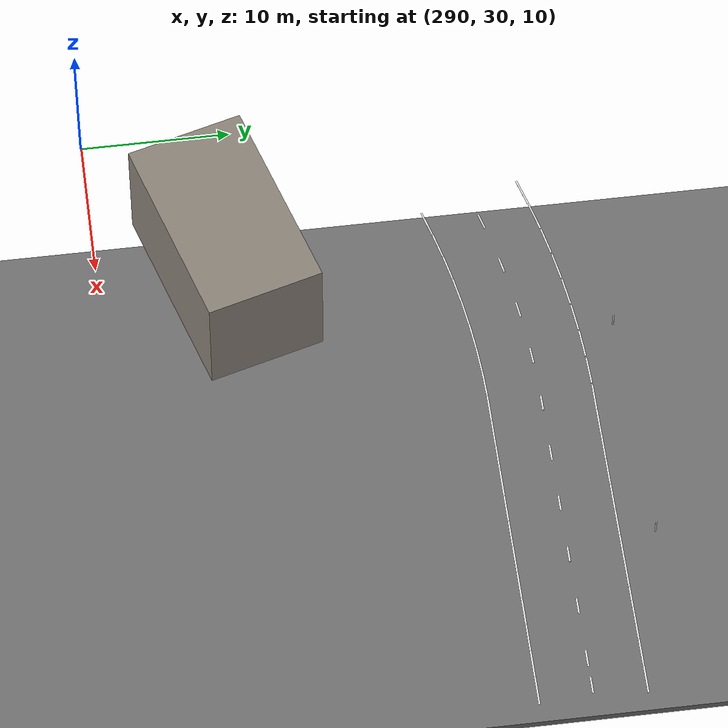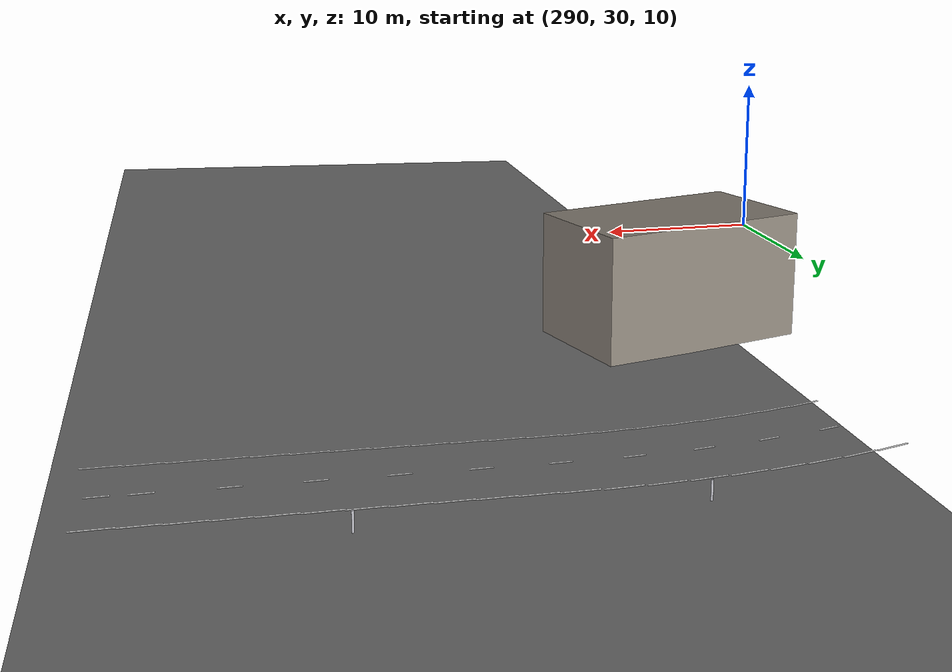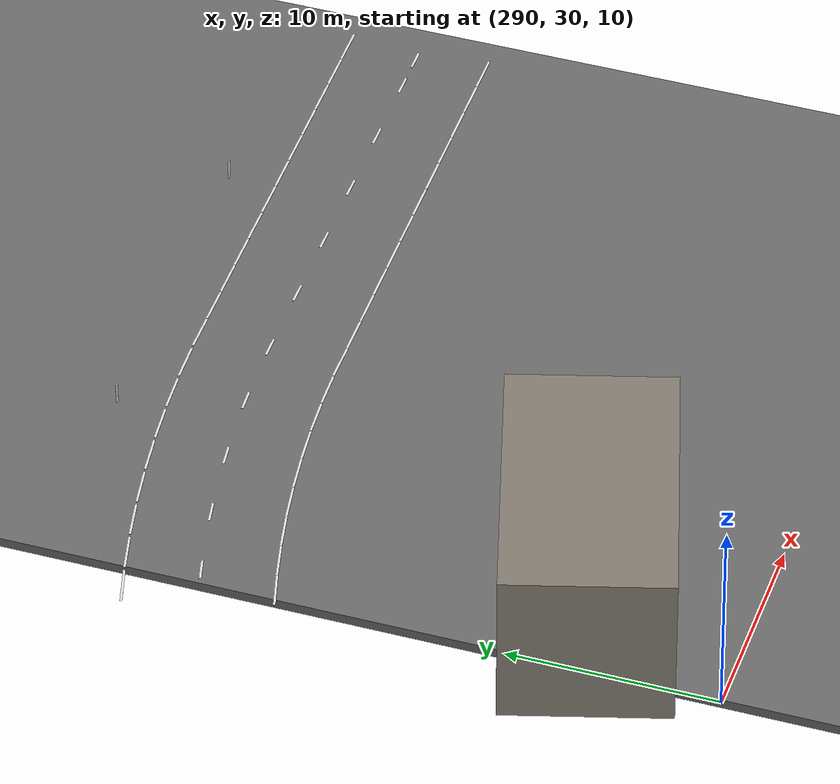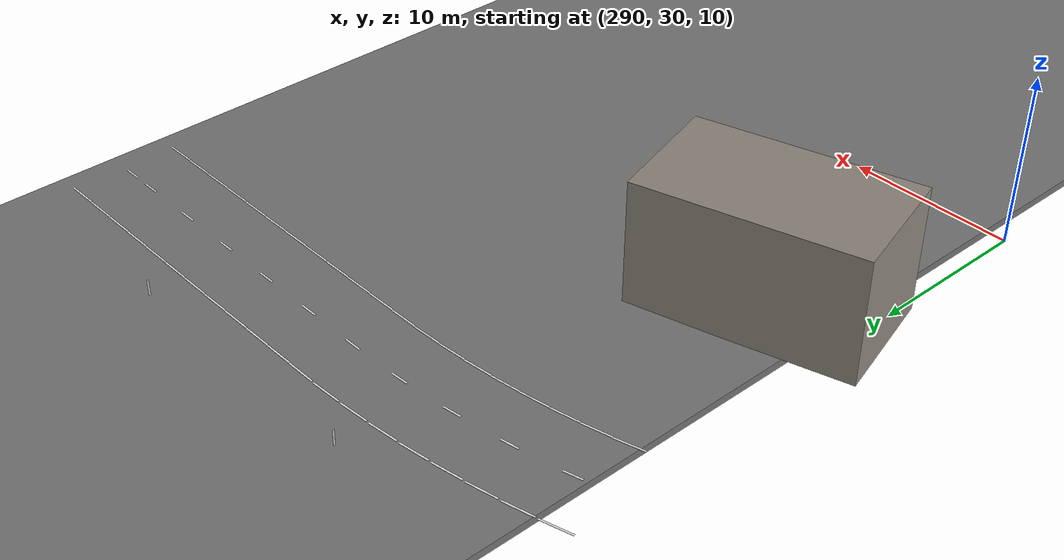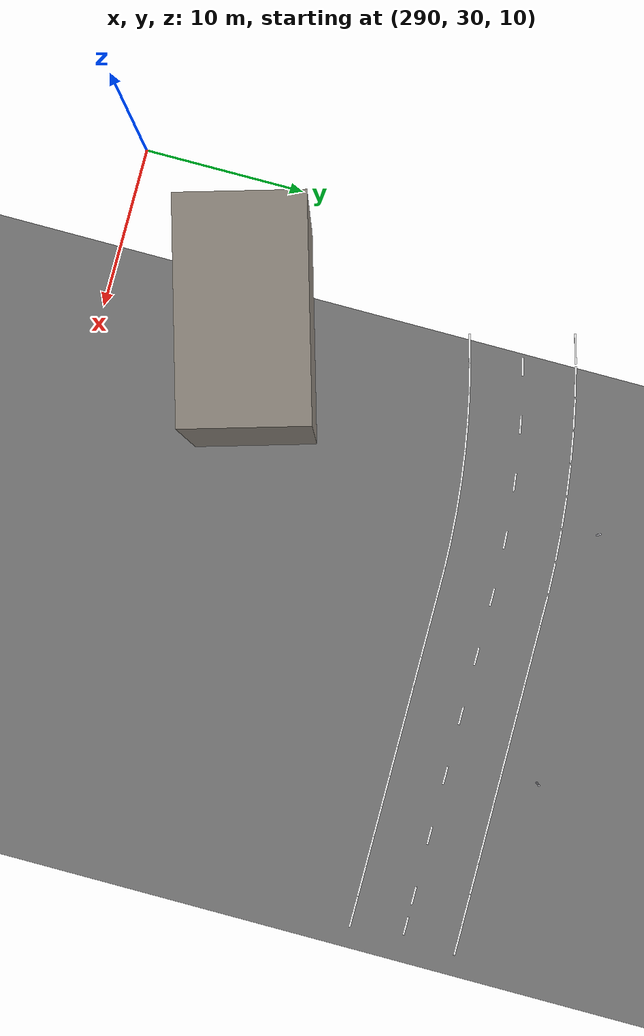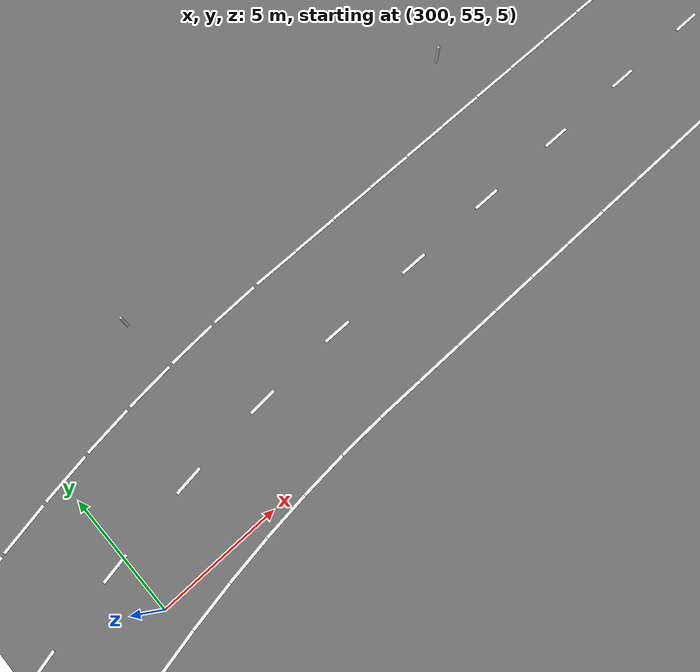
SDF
<sdf version="1.4">
 <world name="marathon_course">
  <include><uri>model://sun</uri></include>
  <model name="road_8">
   <static>true</static>
   <pose>315.2043631016093 37.70038853386919 5.251874541585085 0 -0.017453292519943295 0</pose>
   <link name="link">
    <collision name="collision">
     <geometry><box><size>40.4 125.40077706773837 0.5</size></box></geometry>
    </collision>
    <visual name="visual">
     <geometry><box><size>40.4 125.40077706773837 0.5</size></box></geometry>
     <material><ambient>0.45 0.45 0.45 1</ambient><diffuse>0.45 0.45 0.45 1</diffuse></material>
    </visual>
   </link>
  </model>
  <model name="paint_left_edge_152">
   <static>true</static>
   <pose>293.7725500420109 59.462458314118734 5.147818935111349 0 0 0.2685121926145122</pose>
   <link name="link">
    <visual name="visual">
     <geometry><box><size>2.05 0.12 0.02</size></box></geometry>
     <material><ambient>0.95 0.95 0.95 1</ambient><diffuse>0.95 0.95 0.95 1</diffuse></material>
    </visual>
   </link>
  </model>
  <model name="paint_left_edge_153">
   <static>true</static>
   <pose>295.89347898868976 60.00793096317613 5.184839887583765 0 0 0.2349481685376982</pose>
   <link name="link">
    <visual name="visual">
     <geometry><box><size>2.05 0.12 0.02</size></box></geometry>
     <material><ambient>0.95 0.95 0.95 1</ambient><diffuse>0.95 0.95 0.95 1</diffuse></material>
    </visual>
   </link>
  </model>
  <model name="paint_left_edge_154">
   <static>true</static>
   <pose>298.031518207744 60.48192284656175 5.222159500971433 0 0 0.20138414446088418</pose>
   <link name="link">
    <visual name="visual">
     <geometry><box><size>2.05 0.12 0.02</size></box></geometry>
     <material><ambient>0.95 0.95 0.95 1</ambient><diffuse>0.95 0.95 0.95 1</diffuse></material>
    </visual>
   </link>
  </model>
  <model name="paint_left_edge_155">
   <static>true</static>
   <pose>300.18425933064225 60.88390004182646 5.259735737045266 0 0 0.16782012038407013</pose>
   <link name="link">
    <visual name="visual">
     <geometry><box><size>2.05 0.12 0.02</size></box></geometry>
     <material><ambient>0.95 0.95 0.95 1</ambient><diffuse>0.95 0.95 0.95 1</diffuse></material>
    </visual>
   </link>
  </model>
  <model name="paint_left_edge_156">
   <static>true</static>
   <pose>302.34927742807014 61.21340974659931 5.297526268506635 0 0 0.1342560963072561</pose>
   <link name="link">
    <visual name="visual">
     <geometry><box><size>2.05 0.12 0.02</size></box></geometry>
     <material><ambient>0.95 0.95 0.95 1</ambient><diffuse>0.95 0.95 0.95 1</diffuse></material>
    </visual>
   </link>
  </model>
  <model name="paint_left_edge_157">
   <static>true</static>
   <pose>304.52413374146346 61.470080788641404 5.33548852666646 0 0 0.10069207223044208</pose>
   <link name="link">
    <visual name="visual">
     <geometry><box><size>2.05 0.12 0.02</size></box></geometry>
     <material><ambient>0.95 0.95 0.95 1</ambient><diffuse>0.95 0.95 0.95 1</diffuse></material>
    </visual>
   </link>
  </model>
  <model name="paint_left_edge_158">
   <static>true</static>
   <pose>306.70637843011804 61.65362404394833 5.373579749396184 0 0 0.06712804815362805</pose>
   <link name="link">
    <visual name="visual">
     <geometry><box><size>2.05 0.12 0.02</size></box></geometry>
     <material><ambient>0.95 0.95 0.95 1</ambient><diffuse>0.95 0.95 0.95 1</diffuse></material>
    </visual>
   </link>
  </model>
  <model name="paint_left_edge_159">
   <static>true</static>
   <pose>308.89355333078333 61.76383276243038 5.411757029296664 0 0 0.033564024076814025</pose>
   <link name="link">
    <visual name="visual">
     <geometry><box><size>2.05 0.12 0.02</size></box></geometry>
     <material><ambient>0.95 0.95 0.95 1</ambient><diffuse>0.95 0.95 0.95 1</diffuse></material>
    </visual>
   </link>
  </model>
  <model name="paint_left_edge_160">
   <static>true</static>
   <pose>311.08319472663095 61.80058280080378 5.4499773620306975 0 0 0.0</pose>
   <link name="link">
    <visual name="visual">
     <geometry><box><size>2.05 0.12 0.02</size></box></geometry>
     <material><ambient>0.95 0.95 0.95 1</ambient><diffuse>0.95 0.95 0.95 1</diffuse></material>
    </visual>
   </link>
  </model>
  <model name="paint_left_edge_161">
   <static>true</static>
   <pose>313.08319472663095 61.80058280080378 5.484887491887132 0 0 0.0</pose>
   <link name="link">
    <visual name="visual">
     <geometry><box><size>2.05 0.12 0.02</size></box></geometry>
     <material><ambient>0.95 0.95 0.95 1</ambient><diffuse>0.95 0.95 0.95 1</diffuse></material>
    </visual>
   </link>
  </model>
  <model name="paint_left_edge_162">
   <static>true</static>
   <pose>315.08319472663095 61.80058280080378 5.519797621743567 0 0 0.0</pose>
   <link name="link">
    <visual name="visual">
     <geometry><box><size>2.05 0.12 0.02</size></box></geometry>
     <material><ambient>0.95 0.95 0.95 1</ambient><diffuse>0.95 0.95 0.95 1</diffuse></material>
    </visual>
   </link>
  </model>
  <model name="paint_left_edge_163">
   <static>true</static>
   <pose>317.08319472663095 61.80058280080378 5.554707751600002 0 0 0.0</pose>
   <link name="link">
    <visual name="visual">
     <geometry><box><size>2.05 0.12 0.02</size></box></geometry>
     <material><ambient>0.95 0.95 0.95 1</ambient><diffuse>0.95 0.95 0.95 1</diffuse></material>
    </visual>
   </link>
  </model>
  <model name="paint_left_edge_164">
   <static>true</static>
   <pose>319.08319472663095 61.80058280080378 5.589617881456438 0 0 0.0</pose>
   <link name="link">
    <visual name="visual">
     <geometry><box><size>2.05 0.12 0.02</size></box></geometry>
     <material><ambient>0.95 0.95 0.95 1</ambient><diffuse>0.95 0.95 0.95 1</diffuse></material>
    </visual>
   </link>
  </model>
  <model name="paint_left_edge_165">
   <static>true</static>
   <pose>321.08319472663095 61.80058280080378 5.624528011312873 0 0 0.0</pose>
   <link name="link">
    <visual name="visual">
     <geometry><box><size>2.05 0.12 0.02</size></box></geometry>
     <material><ambient>0.95 0.95 0.95 1</ambient><diffuse>0.95 0.95 0.95 1</diffuse></material>
    </visual>
   </link>
  </model>
  <model name="paint_left_edge_166">
   <static>true</static>
   <pose>323.08319472663095 61.80058280080378 5.659438141169308 0 0 0.0</pose>
   <link name="link">
    <visual name="visual">
     <geometry><box><size>2.05 0.12 0.02</size></box></geometry>
     <material><ambient>0.95 0.95 0.95 1</ambient><diffuse>0.95 0.95 0.95 1</diffuse></material>
    </visual>
   </link>
  </model>
  <model name="paint_left_edge_167">
   <static>true</static>
   <pose>325.08319472663095 61.80058280080378 5.694348271025744 0 0 0.0</pose>
   <link name="link">
    <visual name="visual">
     <geometry><box><size>2.05 0.12 0.02</size></box></geometry>
     <material><ambient>0.95 0.95 0.95 1</ambient><diffuse>0.95 0.95 0.95 1</diffuse></material>
    </visual>
   </link>
  </model>
  <model name="paint_left_edge_168">
   <static>true</static>
   <pose>327.08319472663095 61.80058280080378 5.729258400882179 0 0 0.0</pose>
   <link name="link">
    <visual name="visual">
     <geometry><box><size>2.05 0.12 0.02</size></box></geometry>
     <material><ambient>0.95 0.95 0.95 1</ambient><diffuse>0.95 0.95 0.95 1</diffuse></material>
    </visual>
   </link>
  </model>
  <model name="paint_left_edge_169">
   <static>true</static>
   <pose>329.08319472663095 61.80058280080378 5.764168530738614 0 0 0.0</pose>
   <link name="link">
    <visual name="visual">
     <geometry><box><size>2.05 0.12 0.02</size></box></geometry>
     <material><ambient>0.95 0.95 0.95 1</ambient><diffuse>0.95 0.95 0.95 1</diffuse></material>
    </visual>
   </link>
  </model>
  <model name="paint_left_edge_170">
   <static>true</static>
   <pose>331.08319472663095 61.80058280080378 5.799078660595049 0 0 0.0</pose>
   <link name="link">
    <visual name="visual">
     <geometry><box><size>2.05 0.12 0.02</size></box></geometry>
     <material><ambient>0.95 0.95 0.95 1</ambient><diffuse>0.95 0.95 0.95 1</diffuse></material>
    </visual>
   </link>
  </model>
  <model name="paint_left_edge_171">
   <static>true</static>
   <pose>333.08319472663095 61.80058280080378 5.833988790451484 0 0 0.0</pose>
   <link name="link">
    <visual name="visual">
     <geometry><box><size>2.05 0.12 0.02</size></box></geometry>
     <material><ambient>0.95 0.95 0.95 1</ambient><diffuse>0.95 0.95 0.95 1</diffuse></material>
    </visual>
   </link>
  </model>
  <model name="paint_right_edge_152">
   <static>true</static>
   <pose>295.6296306978322 52.7132915923838 5.180234398535648 0 0 0.2685121926145122</pose>
   <link name="link">
    <visual name="visual">
     <geometry><box><size>2.05 0.12 0.02</size></box></geometry>
     <material><ambient>0.95 0.95 0.95 1</ambient><diffuse>0.95 0.95 0.95 1</diffuse></material>
    </visual>
   </link>
  </model>
  <model name="paint_right_edge_153">
   <static>true</static>
   <pose>297.52302703720454 53.20024610284499 5.213283754574241 0 0 0.2349481685376982</pose>
   <link name="link">
    <visual name="visual">
     <geometry><box><size>2.05 0.12 0.02</size></box></geometry>
     <material><ambient>0.95 0.95 0.95 1</ambient><diffuse>0.95 0.95 0.95 1</diffuse></material>
    </visual>
   </link>
  </model>
  <model name="paint_right_edge_154">
   <static>true</static>
   <pose>299.4316980641763 53.62338828226588 5.246599731276641 0 0 0.20138414446088418</pose>
   <link name="link">
    <visual name="visual">
     <geometry><box><size>2.05 0.12 0.02</size></box></geometry>
     <material><ambient>0.95 0.95 0.95 1</ambient><diffuse>0.95 0.95 0.95 1</diffuse></material>
    </visual>
   </link>
  </model>
  <model name="paint_right_edge_155">
   <static>true</static>
   <pose>301.35349377925405 53.982241487233985 5.280144800262093 0 0 0.16782012038407013</pose>
   <link name="link">
    <visual name="visual">
     <geometry><box><size>2.05 0.12 0.02</size></box></geometry>
     <material><ambient>0.95 0.95 0.95 1</ambient><diffuse>0.95 0.95 0.95 1</diffuse></material>
    </visual>
   </link>
  </model>
  <model name="paint_right_edge_156">
   <static>true</static>
   <pose>303.28624939879694 54.276401491877955 5.313881175091592 0 0 0.1342560963072561</pose>
   <link name="link">
    <visual name="visual">
     <geometry><box><size>2.05 0.12 0.02</size></box></geometry>
     <material><ambient>0.95 0.95 0.95 1</ambient><diffuse>0.95 0.95 0.95 1</diffuse></material>
    </visual>
   </link>
  </model>
  <model name="paint_right_edge_157">
   <static>true</static>
   <pose>305.2277877935121 54.505536943202884 5.347770853831973 0 0 0.10069207223044208</pose>
   <link name="link">
    <visual name="visual">
     <geometry><box><size>2.05 0.12 0.02</size></box></geometry>
     <material><ambient>0.95 0.95 0.95 1</ambient><diffuse>0.95 0.95 0.95 1</diffuse></material>
    </visual>
   </link>
  </model>
  <model name="paint_right_edge_158">
   <static>true</static>
   <pose>307.175921940855 54.66938973433895 5.38177566186272 0 0 0.06712804815362805</pose>
   <link name="link">
    <visual name="visual">
     <geometry><box><size>2.05 0.12 0.02</size></box></geometry>
     <material><ambient>0.95 0.95 0.95 1</ambient><diffuse>0.95 0.95 0.95 1</diffuse></material>
    </visual>
   </link>
  </model>
  <model name="paint_right_edge_159">
   <static>true</static>
   <pose>309.12845738857544 54.767775295282696 5.415857294877327 0 0 0.033564024076814025</pose>
   <link name="link">
    <visual name="visual">
     <geometry><box><size>2.05 0.12 0.02</size></box></geometry>
     <material><ambient>0.95 0.95 0.95 1</ambient><diffuse>0.95 0.95 0.95 1</diffuse></material>
    </visual>
   </link>
  </model>
  <model name="paint_right_edge_160">
   <static>true</static>
   <pose>311.08319472663095 54.80058280080378 5.4499773620306975 0 0 0.0</pose>
   <link name="link">
    <visual name="visual">
     <geometry><box><size>2.05 0.12 0.02</size></box></geometry>
     <material><ambient>0.95 0.95 0.95 1</ambient><diffuse>0.95 0.95 0.95 1</diffuse></material>
    </visual>
   </link>
  </model>
  <model name="paint_right_edge_161">
   <static>true</static>
   <pose>313.08319472663095 54.80058280080378 5.484887491887132 0 0 0.0</pose>
   <link name="link">
    <visual name="visual">
     <geometry><box><size>2.05 0.12 0.02</size></box></geometry>
     <material><ambient>0.95 0.95 0.95 1</ambient><diffuse>0.95 0.95 0.95 1</diffuse></material>
    </visual>
   </link>
  </model>
  <model name="paint_right_edge_162">
   <static>true</static>
   <pose>315.08319472663095 54.80058280080378 5.519797621743567 0 0 0.0</pose>
   <link name="link">
    <visual name="visual">
     <geometry><box><size>2.05 0.12 0.02</size></box></geometry>
     <material><ambient>0.95 0.95 0.95 1</ambient><diffuse>0.95 0.95 0.95 1</diffuse></material>
    </visual>
   </link>
  </model>
  <model name="paint_right_edge_163">
   <static>true</static>
   <pose>317.08319472663095 54.80058280080378 5.554707751600002 0 0 0.0</pose>
   <link name="link">
    <visual name="visual">
     <geometry><box><size>2.05 0.12 0.02</size></box></geometry>
     <material><ambient>0.95 0.95 0.95 1</ambient><diffuse>0.95 0.95 0.95 1</diffuse></material>
    </visual>
   </link>
  </model>
  <model name="paint_right_edge_164">
   <static>true</static>
   <pose>319.08319472663095 54.80058280080378 5.589617881456438 0 0 0.0</pose>
   <link name="link">
    <visual name="visual">
     <geometry><box><size>2.05 0.12 0.02</size></box></geometry>
     <material><ambient>0.95 0.95 0.95 1</ambient><diffuse>0.95 0.95 0.95 1</diffuse></material>
    </visual>
   </link>
  </model>
  <model name="paint_right_edge_165">
   <static>true</static>
   <pose>321.08319472663095 54.80058280080378 5.624528011312873 0 0 0.0</pose>
   <link name="link">
    <visual name="visual">
     <geometry><box><size>2.05 0.12 0.02</size></box></geometry>
     <material><ambient>0.95 0.95 0.95 1</ambient><diffuse>0.95 0.95 0.95 1</diffuse></material>
    </visual>
   </link>
  </model>
  <model name="paint_right_edge_166">
   <static>true</static>
   <pose>323.08319472663095 54.80058280080378 5.659438141169308 0 0 0.0</pose>
   <link name="link">
    <visual name="visual">
     <geometry><box><size>2.05 0.12 0.02</size></box></geometry>
     <material><ambient>0.95 0.95 0.95 1</ambient><diffuse>0.95 0.95 0.95 1</diffuse></material>
    </visual>
   </link>
  </model>
  <model name="paint_right_edge_167">
   <static>true</static>
   <pose>325.08319472663095 54.80058280080378 5.694348271025744 0 0 0.0</pose>
   <link name="link">
    <visual name="visual">
     <geometry><box><size>2.05 0.12 0.02</size></box></geometry>
     <material><ambient>0.95 0.95 0.95 1</ambient><diffuse>0.95 0.95 0.95 1</diffuse></material>
    </visual>
   </link>
  </model>
  <model name="paint_right_edge_168">
   <static>true</static>
   <pose>327.08319472663095 54.80058280080378 5.729258400882179 0 0 0.0</pose>
   <link name="link">
    <visual name="visual">
     <geometry><box><size>2.05 0.12 0.02</size></box></geometry>
     <material><ambient>0.95 0.95 0.95 1</ambient><diffuse>0.95 0.95 0.95 1</diffuse></material>
    </visual>
   </link>
  </model>
  <model name="paint_right_edge_169">
   <static>true</static>
   <pose>329.08319472663095 54.80058280080378 5.764168530738614 0 0 0.0</pose>
   <link name="link">
    <visual name="visual">
     <geometry><box><size>2.05 0.12 0.02</size></box></geometry>
     <material><ambient>0.95 0.95 0.95 1</ambient><diffuse>0.95 0.95 0.95 1</diffuse></material>
    </visual>
   </link>
  </model>
  <model name="paint_right_edge_170">
   <static>true</static>
   <pose>331.08319472663095 54.80058280080378 5.799078660595049 0 0 0.0</pose>
   <link name="link">
    <visual name="visual">
     <geometry><box><size>2.05 0.12 0.02</size></box></geometry>
     <material><ambient>0.95 0.95 0.95 1</ambient><diffuse>0.95 0.95 0.95 1</diffuse></material>
    </visual>
   </link>
  </model>
  <model name="paint_right_edge_171">
   <static>true</static>
   <pose>333.08319472663095 54.80058280080378 5.833988790451484 0 0 0.0</pose>
   <link name="link">
    <visual name="visual">
     <geometry><box><size>2.05 0.12 0.02</size></box></geometry>
     <material><ambient>0.95 0.95 0.95 1</ambient><diffuse>0.95 0.95 0.95 1</diffuse></material>
    </visual>
   </link>
  </model>
  <model name="paint_divider_83">
   <static>true</static>
   <pose>295.8459254192553 56.39110522544935 5.184009836941718 0 0 0.24933275028490423</pose>
   <link name="link">
    <visual name="visual">
     <geometry><box><size>1.2 0.12 0.02</size></box></geometry>
     <material><ambient>0.95 0.95 0.95 1</ambient><diffuse>0.95 0.95 0.95 1</diffuse></material>
    </visual>
   </link>
  </model>
  <model name="paint_divider_84">
   <static>true</static>
   <pose>299.60315298432096 57.224062522959336 5.249592488040028 0 0 0.18699956271367818</pose>
   <link name="link">
    <visual name="visual">
     <geometry><box><size>1.2 0.12 0.02</size></box></geometry>
     <material><ambient>0.95 0.95 0.95 1</ambient><diffuse>0.95 0.95 0.95 1</diffuse></material>
    </visual>
   </link>
  </model>
  <model name="paint_divider_85">
   <static>true</static>
   <pose>303.4049709646488 57.821353808364414 5.315953467731916 0 0 0.1246663751424521</pose>
   <link name="link">
    <visual name="visual">
     <geometry><box><size>1.2 0.12 0.02</size></box></geometry>
     <material><ambient>0.95 0.95 0.95 1</ambient><diffuse>0.95 0.95 0.95 1</diffuse></material>
    </visual>
   </link>
  </model>
  <model name="paint_divider_86">
   <static>true</static>
   <pose>307.2366124590113 58.180659101733625 5.382835018797667 0 0 0.06233318757122608</pose>
   <link name="link">
    <visual name="visual">
     <geometry><box><size>1.2 0.12 0.02</size></box></geometry>
     <material><ambient>0.95 0.95 0.95 1</ambient><diffuse>0.95 0.95 0.95 1</diffuse></material>
    </visual>
   </link>
  </model>
  <model name="paint_divider_87">
   <static>true</static>
   <pose>311.08319472663095 58.30058280080378 5.4499773620306975 0 0 0.0</pose>
   <link name="link">
    <visual name="visual">
     <geometry><box><size>1.2 0.12 0.02</size></box></geometry>
     <material><ambient>0.95 0.95 0.95 1</ambient><diffuse>0.95 0.95 0.95 1</diffuse></material>
    </visual>
   </link>
  </model>
  <model name="paint_divider_88">
   <static>true</static>
   <pose>315.08319472663095 58.30058280080378 5.519797621743567 0 0 0.0</pose>
   <link name="link">
    <visual name="visual">
     <geometry><box><size>1.2 0.12 0.02</size></box></geometry>
     <material><ambient>0.95 0.95 0.95 1</ambient><diffuse>0.95 0.95 0.95 1</diffuse></material>
    </visual>
   </link>
  </model>
  <model name="paint_divider_89">
   <static>true</static>
   <pose>319.08319472663095 58.30058280080378 5.589617881456438 0 0 0.0</pose>
   <link name="link">
    <visual name="visual">
     <geometry><box><size>1.2 0.12 0.02</size></box></geometry>
     <material><ambient>0.95 0.95 0.95 1</ambient><diffuse>0.95 0.95 0.95 1</diffuse></material>
    </visual>
   </link>
  </model>
  <model name="paint_divider_90">
   <static>true</static>
   <pose>323.08319472663095 58.30058280080378 5.659438141169308 0 0 0.0</pose>
   <link name="link">
    <visual name="visual">
     <geometry><box><size>1.2 0.12 0.02</size></box></geometry>
     <material><ambient>0.95 0.95 0.95 1</ambient><diffuse>0.95 0.95 0.95 1</diffuse></material>
    </visual>
   </link>
  </model>
  <model name="paint_divider_91">
   <static>true</static>
   <pose>327.08319472663095 58.30058280080378 5.729258400882179 0 0 0.0</pose>
   <link name="link">
    <visual name="visual">
     <geometry><box><size>1.2 0.12 0.02</size></box></geometry>
     <material><ambient>0.95 0.95 0.95 1</ambient><diffuse>0.95 0.95 0.95 1</diffuse></material>
    </visual>
   </link>
  </model>
  <model name="paint_divider_92">
   <static>true</static>
   <pose>331.08319472663095 58.30058280080378 5.799078660595049 0 0 0.0</pose>
   <link name="link">
    <visual name="visual">
     <geometry><box><size>1.2 0.12 0.02</size></box></geometry>
     <material><ambient>0.95 0.95 0.95 1</ambient><diffuse>0.95 0.95 0.95 1</diffuse></material>
    </visual>
   </link>
  </model>
  <model name="paint_divider_93">
   <static>true</static>
   <pose>333.08319472663095 58.30058280080378 5.833988790451484 0 0 0.0</pose>
   <link name="link">
    <visual name="visual">
     <geometry><box><size>1.2 0.12 0.02</size></box></geometry>
     <material><ambient>0.95 0.95 0.95 1</ambient><diffuse>0.95 0.95 0.95 1</diffuse></material>
    </visual>
   </link>
  </model>
  <model name="building_7">
   <static>true</static>
   <pose>298.72784561859004 38.77992349660097 9.214313941139048 0 0 0.2846331631624509</pose>
   <link name="link">
    <collision name="collision"><geometry><box><size>14.0 8.0 8.0</size></box></geometry></collision>
    <visual name="visual">
     <geometry><box><size>14.0 8.0 8.0</size></box></geometry>
     <material><ambient>0.55 0.52 0.48 1</ambient><diffuse>0.55 0.52 0.48 1</diffuse></material>
    </visual>
   </link>
  </model>
  <model name="barrier_19">
   <static>true</static>
   <pose>305.36900960890694 63.908293096445206 5.855235889788971 0 0 0.08463081617710508</pose>
   <link name="link">
    <collision name="collision">
     <geometry><cylinder><radius>0.06</radius><length>1.05</length></cylinder></geometry>
    </collision>
    <visual name="visual">
     <geometry><cylinder><radius>0.06</radius><length>1.05</length></cylinder></geometry>
     <material><ambient>0.75 0.75 0.78 1</ambient><diffuse>0.75 0.75 0.78 1</diffuse></material>
    </visual>
   </link>
  </model>
  <model name="barrier_20">
   <static>true</static>
   <pose>322.00540534349096 64.15058280080378 6.145625257507657 0 0 0.0</pose>
   <link name="link">
    <collision name="collision">
     <geometry><cylinder><radius>0.06</radius><length>1.05</length></cylinder></geometry>
    </collision>
    <visual name="visual">
     <geometry><cylinder><radius>0.06</radius><length>1.05</length></cylinder></geometry>
     <material><ambient>0.75 0.75 0.78 1</ambient><diffuse>0.75 0.75 0.78 1</diffuse></material>
    </visual>
   </link>
  </model>
 </world>
</sdf>
